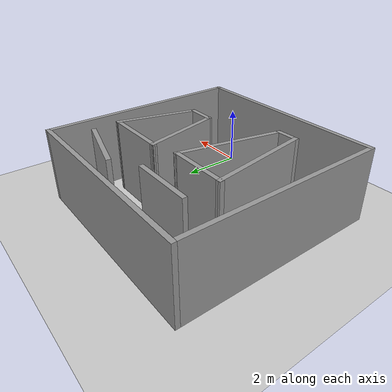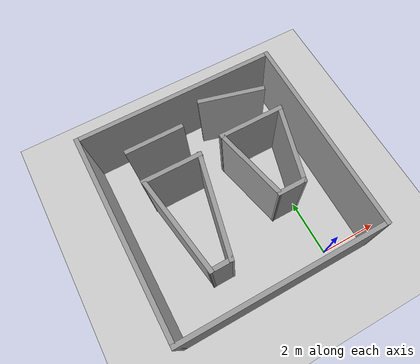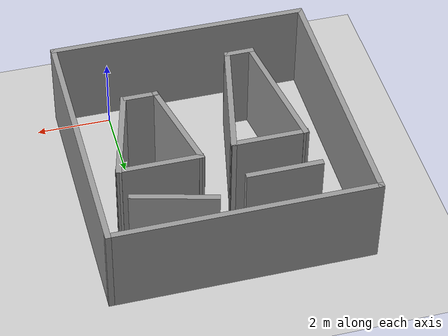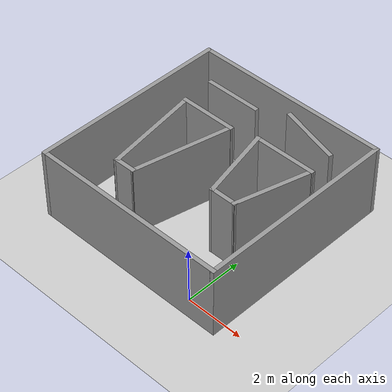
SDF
<sdf version="1.7">
 <world name="default">
  <light name="sun" type="directional">
   <pose>0 0 10 0 -0 0</pose>
   <diffuse>0.8 0.8 0.8 1</diffuse>
   <specular>0.2 0.2 0.2 1</specular>
   <attenuation>
    <range>1000</range>
    <constant>0.9</constant>
    <linear>0.01</linear>
    <quadratic>0.001</quadratic>
   </attenuation>
   <direction>-0.5 0.1 -0.9</direction>
   <spot><inner_angle>0</inner_angle><outer_angle>0</outer_angle><falloff>0</falloff></spot>
  </light>
  <model name="ground_plane">
   <static>1</static>
   <link name="link">
    <collision name="collision">
     <geometry><plane><normal>0 0 1</normal><size>100 100</size></plane></geometry>
     <surface><friction><ode><mu>100</mu><mu2>50</mu2></ode></friction></surface>
    </collision>
    <visual name="visual">
     <cast_shadows>0</cast_shadows>
     <geometry><plane><normal>0 0 1</normal><size>100 100</size></plane></geometry>
     <material>
      <script><uri>file://media/materials/scripts/gazebo.material</uri><name>Gazebo/Grey</name></script>
     </material>
    </visual>
   </link>
  </model>
  <gravity>0 0 -9.8</gravity>
  <magnetic_field>6e-06 2.3e-05 -4.2e-05</magnetic_field>
  <atmosphere type="adiabatic"/>
  <physics type="ode">
   <max_step_size>0.001</max_step_size>
   <real_time_factor>1</real_time_factor>
   <real_time_update_rate>1000</real_time_update_rate>
  </physics>
  <scene><ambient>0.4 0.4 0.4 1</ambient><background>0.7 0.7 0.7 1</background><shadows>1</shadows></scene>
  <spherical_coordinates>
   <surface_model>EARTH_WGS84</surface_model>
   <latitude_deg>0</latitude_deg>
   <longitude_deg>0</longitude_deg>
   <elevation>0</elevation>
   <heading_deg>0</heading_deg>
  </spherical_coordinates>
  <model name="maze-like_map">
   <pose>-2.07884 3.02691 0 0 -0 0</pose>
   <link name="Wall_0">
    <collision name="Wall_0_Collision">
     <geometry><box><size>7 0.15 2.5</size></box></geometry>
     <pose>0 0 1.25 0 -0 0</pose>
    </collision>
    <visual name="Wall_0_Visual">
     <pose>0 0 1.25 0 -0 0</pose>
     <geometry><box><size>7 0.15 2.5</size></box></geometry>
     <material>
      <script><uri>file://media/materials/scripts/gazebo.material</uri><name>Gazebo/Grey</name></script>
      <ambient>1 1 1 1</ambient>
     </material>
     <meta><layer>0</layer></meta>
    </visual>
    <pose>0 -3.425 0 0 -0 0</pose>
   </link>
   <link name="Wall_1">
    <collision name="Wall_1_Collision">
     <geometry><box><size>7 0.15 2.5</size></box></geometry>
     <pose>0 0 1.25 0 -0 0</pose>
    </collision>
    <visual name="Wall_1_Visual">
     <pose>0 0 1.25 0 -0 0</pose>
     <geometry><box><size>7 0.15 2.5</size></box></geometry>
     <material>
      <script><uri>file://media/materials/scripts/gazebo.material</uri><name>Gazebo/Grey</name></script>
      <ambient>1 1 1 1</ambient>
     </material>
     <meta><layer>0</layer></meta>
    </visual>
    <pose>3.425 0 0 0 -0 1.5708</pose>
   </link>
   <link name="Wall_12">
    <collision name="Wall_12_Collision">
     <geometry><box><size>0.797772 0.15 2.5</size></box></geometry>
     <pose>0 0 1.25 0 -0 0</pose>
    </collision>
    <visual name="Wall_12_Visual">
     <pose>0 0 1.25 0 -0 0</pose>
     <geometry><box><size>0.797772 0.15 2.5</size></box></geometry>
     <material>
      <script><uri>file://media/materials/scripts/gazebo.material</uri><name>Gazebo/Grey</name></script>
      <ambient>1 1 1 1</ambient>
     </material>
     <meta><layer>0</layer></meta>
    </visual>
    <pose>-1.36415 -2.17134 0 0 -0 0.008677</pose>
   </link>
   <link name="Wall_14">
    <collision name="Wall_14_Collision">
     <geometry><box><size>2.04028 0.15 2.5</size></box></geometry>
     <pose>0 0 1.25 0 -0 0</pose>
    </collision>
    <visual name="Wall_14_Visual">
     <pose>0 0 1.25 0 -0 0</pose>
     <geometry><box><size>2.04028 0.15 2.5</size></box></geometry>
     <material>
      <script><uri>file://media/materials/scripts/gazebo.material</uri><name>Gazebo/Grey</name></script>
      <ambient>1 1 1 1</ambient>
     </material>
     <meta><layer>0</layer></meta>
    </visual>
    <pose>-1.24829 1.14809 0 0 -0 3.13999</pose>
   </link>
   <link name="Wall_2">
    <collision name="Wall_2_Collision">
     <geometry><box><size>7 0.15 2.5</size></box></geometry>
     <pose>0 0 1.25 0 -0 0</pose>
    </collision>
    <visual name="Wall_2_Visual">
     <pose>0 0 1.25 0 -0 0</pose>
     <geometry><box><size>7 0.15 2.5</size></box></geometry>
     <material>
      <script><uri>file://media/materials/scripts/gazebo.material</uri><name>Gazebo/Grey</name></script>
      <ambient>1 1 1 1</ambient>
     </material>
     <meta><layer>0</layer></meta>
    </visual>
    <pose>0 3.425 0 0 -0 3.14159</pose>
   </link>
   <link name="Wall_20">
    <collision name="Wall_20_Collision">
     <geometry><box><size>3.51196 0.15 2.5</size></box></geometry>
     <pose>0 0 1.25 0 -0 0</pose>
    </collision>
    <visual name="Wall_20_Visual">
     <pose>0 0 1.25 0 -0 0</pose>
     <geometry><box><size>3.51196 0.15 2.5</size></box></geometry>
     <material>
      <script><uri>file://media/materials/scripts/gazebo.material</uri><name>Gazebo/Grey</name></script>
      <ambient>1 1 1 1</ambient>
     </material>
     <meta><layer>0</layer></meta>
    </visual>
    <pose>-1.92929 -0.512273 0 0 -0 1.7217</pose>
   </link>
   <link name="Wall_23">
    <collision name="Wall_23_Collision">
     <geometry><box><size>3.55477 0.15 2.5</size></box></geometry>
     <pose>0 0 1.25 0 -0 0</pose>
    </collision>
    <visual name="Wall_23_Visual">
     <pose>0 0 1.25 0 -0 0</pose>
     <geometry><box><size>3.55477 0.15 2.5</size></box></geometry>
     <material>
      <script><uri>file://media/materials/scripts/gazebo.material</uri><name>Gazebo/Grey</name></script>
      <ambient>1 1 1 1</ambient>
     </material>
     <meta><layer>0</layer></meta>
    </visual>
    <pose>-0.665994 -0.505258 0 0 -0 1.35601</pose>
   </link>
   <link name="Wall_25">
    <collision name="Wall_25_Collision">
     <geometry><box><size>1 0.15 2.5</size></box></geometry>
     <pose>0 0 1.25 0 -0 0</pose>
    </collision>
    <visual name="Wall_25_Visual">
     <pose>0 0 1.25 0 -0 0</pose>
     <geometry><box><size>1 0.15 2.5</size></box></geometry>
     <material>
      <script><uri>file://media/materials/scripts/gazebo.material</uri><name>Gazebo/Grey</name></script>
      <ambient>1 1 1 1</ambient>
     </material>
     <meta><layer>0</layer></meta>
    </visual>
    <pose>1.60425 -1.14104 0 0 -0 0</pose>
   </link>
   <link name="Wall_26">
    <collision name="Wall_26_Collision">
     <geometry><box><size>2.75 0.15 2.5</size></box></geometry>
     <pose>0 0 1.25 0 -0 0</pose>
    </collision>
    <visual name="Wall_26_Visual">
     <pose>0 0 1.25 0 -0 0</pose>
     <geometry><box><size>2.75 0.15 2.5</size></box></geometry>
     <material>
      <script><uri>file://media/materials/scripts/gazebo.material</uri><name>Gazebo/Grey</name></script>
      <ambient>1 1 1 1</ambient>
     </material>
     <meta><layer>0</layer></meta>
    </visual>
    <pose>2.36571 0.114661 0 0 -0 1.309</pose>
   </link>
   <link name="Wall_27">
    <collision name="Wall_27_Collision">
     <geometry><box><size>2.25 0.15 2.5</size></box></geometry>
     <pose>0 0 1.25 0 -0 0</pose>
    </collision>
    <visual name="Wall_27_Visual">
     <pose>0 0 1.25 0 -0 0</pose>
     <geometry><box><size>2.25 0.15 2.5</size></box></geometry>
     <material>
      <script><uri>file://media/materials/scripts/gazebo.material</uri><name>Gazebo/Grey</name></script>
      <ambient>1 1 1 1</ambient>
     </material>
     <meta><layer>0</layer></meta>
    </visual>
    <pose>1.65218 1.37037 0 0 -0 3.14159</pose>
   </link>
   <link name="Wall_28">
    <collision name="Wall_28_Collision">
     <geometry><box><size>2.72685 0.15 2.5</size></box></geometry>
     <pose>0 0 1.25 0 -0 0</pose>
    </collision>
    <visual name="Wall_28_Visual">
     <pose>0 0 1.25 0 -0 0</pose>
     <geometry><box><size>2.72685 0.15 2.5</size></box></geometry>
     <material>
      <script><uri>file://media/materials/scripts/gazebo.material</uri><name>Gazebo/Grey</name></script>
      <ambient>1 1 1 1</ambient>
     </material>
     <meta><layer>0</layer></meta>
    </visual>
    <pose>0.890711 0.114661 0 0 -0 -1.34494</pose>
   </link>
   <link name="Wall_3">
    <collision name="Wall_3_Collision">
     <geometry><box><size>7 0.15 2.5</size></box></geometry>
     <pose>0 0 1.25 0 -0 0</pose>
    </collision>
    <visual name="Wall_3_Visual">
     <pose>0 0 1.25 0 -0 0</pose>
     <geometry><box><size>7 0.15 2.5</size></box></geometry>
     <material>
      <script><uri>file://media/materials/scripts/gazebo.material</uri><name>Gazebo/Grey</name></script>
      <ambient>1 1 1 1</ambient>
     </material>
     <meta><layer>0</layer></meta>
    </visual>
    <pose>-3.425 0 0 0 -0 -1.5708</pose>
   </link>
   <link name="Wall_30">
    <collision name="Wall_30_Collision">
     <geometry><box><size>2 0.15 2.5</size></box></geometry>
     <pose>0 0 1.25 0 -0 0</pose>
    </collision>
    <visual name="Wall_30_Visual">
     <pose>0 0 1.25 0 -0 0</pose>
     <geometry><box><size>2 0.15 2.5</size></box></geometry>
     <material>
      <script><uri>file://media/materials/scripts/gazebo.material</uri><name>Gazebo/Grey</name></script>
      <ambient>1 1 1 1</ambient>
     </material>
     <meta><layer>0</layer></meta>
    </visual>
    <pose>-1.29909 2.30612 0 0 -0 0</pose>
   </link>
   <link name="Wall_32">
    <collision name="Wall_32_Collision">
     <geometry><box><size>2.25 0.15 2.5</size></box></geometry>
     <pose>0 0 1.25 0 -0 0</pose>
    </collision>
    <visual name="Wall_32_Visual">
     <pose>0 0 1.25 0 -0 0</pose>
     <geometry><box><size>2.25 0.15 2.5</size></box></geometry>
     <material>
      <script><uri>file://media/materials/scripts/gazebo.material</uri><name>Gazebo/Grey</name></script>
      <ambient>1 1 1 1</ambient>
     </material>
     <meta><layer>0</layer></meta>
    </visual>
    <pose>1.58195 2.5634 0 0 -0 -0.261799</pose>
   </link>
   <static>1</static>
  </model>
 </world>
</sdf>
